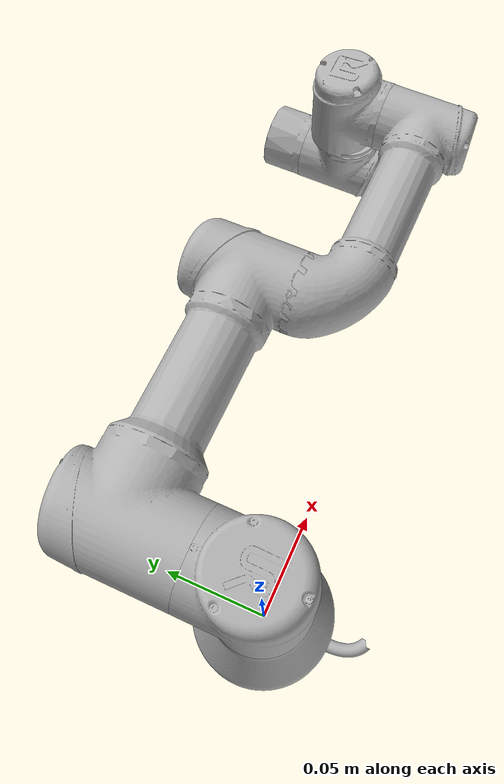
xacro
<?xml version="1.0"?>
<robot xmlns:xacro="http://ros.org/wiki/xacro"
       name="ur3" >

  <!-- common stuff -->
  <xacro:include filename="$(find ur_description)/urdf/common.gazebo.xacro" />

  <!-- ur3 -->
  <xacro:include filename="$(find ur_description)/urdf/ur3.urdf.xacro" />

  <!-- arm -->
  <xacro:ur3_robot prefix="" joint_limited="false"/>
</robot>

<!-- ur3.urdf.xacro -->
<robot xmlns:xacro="http://ros.org/wiki/xacro">

<!--
  Author: Felix Messmer
-->
  <xacro:include filename="$(find ur_description)/urdf/ur.transmission.xacro" />
  <xacro:include filename="$(find ur_description)/urdf/ur.gazebo.xacro" />

  <!-- Inertia parameters -->
  <xacro:property name="base_mass" value="0.0001" />  <!-- This mass might be incorrect -->
  <xacro:property name="shoulder_mass" value="0.0001" />
  <xacro:property name="upper_arm_mass" value="0.000171" />
  <xacro:property name="forearm_mass" value="0.000063" />
  <xacro:property name="wrist_1_mass" value="0.00004" />
  <xacro:property name="wrist_2_mass" value="0.00004" />
  <xacro:property name="wrist_3_mass" value="0.0000175" />

  <xacro:property name="shoulder_cog" value="0.0 -0.02 0.0" />
  <xacro:property name="upper_arm_cog" value="0.13 0.0 0.1157" />
  <xacro:property name="forearm_cog" value="0.05 0.0 0.0238" />
  <xacro:property name="wrist_1_cog" value="0.0 0.0 0.01" />
  <xacro:property name="wrist_2_cog" value="0.0 0.0 0.01" />
  <xacro:property name="wrist_3_cog" value="0.0 0.0 -0.02" />

  <!-- Kinematic model -->
  <!-- Properties from urcontrol.conf -->
  <xacro:property name="ur3_d1" value="0.07595" />
  <xacro:property name="ur3_a2" value="-0.121825" />
  <xacro:property name="ur3_a3" value="-0.106625" />
  <xacro:property name="ur3_d4" value="0.056175" />
  <xacro:property name="ur3_d5" value="0.042675" />
  <xacro:property name="ur3_d6" value="0.04095" />

  <!-- Arbitrary offsets for shoulder/elbow joints -->
  <xacro:property name="shoulder_offset" value="0.0599" />  <!-- measured from model -->
  <xacro:property name="elbow_offset" value="-0.04265" /> <!-- measured from model -->

  <!-- link lengths used in model -->
  <xacro:property name="shoulder_height" value="${ur3_d1}" />
  <xacro:property name="upper_arm_length" value="${-ur3_a2}" />
  <xacro:property name="forearm_length" value="${-ur3_a3}" />
  <xacro:property name="wrist_1_length" value="${ur3_d4 - elbow_offset - shoulder_offset}" />
  <xacro:property name="wrist_2_length" value="${ur3_d5}" />
  <xacro:property name="wrist_3_length" value="${ur3_d6}" />

  <xacro:macro name="cylinder_inertial" params="radius length mass *origin">
    <inertial>
      <mass value="${mass}" />
      <xacro:insert_block name="origin" />
      <inertia ixx="${0.0833333 * mass * (3 * radius * radius + length * length)}" ixy="0.0" ixz="0.0"
        iyy="${0.0833333 * mass * (3 * radius * radius + length * length)}" iyz="0.0"
        izz="${0.5 * mass * radius * radius}" />
    </inertial>
  </xacro:macro>

  <xacro:macro name="ur3_robot" params="prefix joint_limited
     shoulder_pan_lower_limit:=${-2*pi}    shoulder_pan_upper_limit:=${2*pi}
     shoulder_lift_lower_limit:=${-2*pi}    shoulder_lift_upper_limit:=${2*pi}
     elbow_joint_lower_limit:=${-2*pi}    elbow_joint_upper_limit:=${2*pi}
     wrist_1_lower_limit:=${-2*pi}    wrist_1_upper_limit:=${2*pi}
     wrist_2_lower_limit:=${-2*pi}    wrist_2_upper_limit:=${2*pi}
     wrist_3_lower_limit:=${-2*pi}    wrist_3_upper_limit:=${2*pi}">

    <link name="${prefix}base_link" >
      <visual>
        <geometry>
          <mesh filename="package://ur_description/meshes/ur3/visual/base.dae"/>
        </geometry>
        <material name="LightGrey">
          <color rgba="0.7 0.7 0.7 1.0"/>
        </material>
      </visual>
      <collision>
        <geometry>
          <mesh filename="package://ur_description/meshes/ur3/collision/base.stl"/>
        </geometry>
      </collision>
      <xacro:cylinder_inertial radius="0.075" length="0.038" mass="${base_mass}">
        <origin xyz="0.0 0.0 0.0" rpy="0 0 0" />
      </xacro:cylinder_inertial>
    </link>

    <joint name="${prefix}shoulder_pan_joint" type="revolute">
      <parent link="${prefix}base_link" />
      <child link = "${prefix}shoulder_link" />
      <origin xyz="0.0 0.0 ${shoulder_height}" rpy="0.0 0.0 0.0" />
      <axis xyz="0 0 1" />
      <xacro:unless value="${joint_limited}">
        <limit lower="${-2.0 * pi}" upper="${2.0 * pi}" effort="330.0" velocity="2.16"/>
      </xacro:unless>
      <xacro:if value="${joint_limited}">
        <limit lower="${shoulder_pan_lower_limit}" upper="${shoulder_pan_upper_limit}" effort="330.0" velocity="2.16"/>
      </xacro:if>
      <dynamics damping="0.0" friction="0.0"/>
    </joint>

    <link name="${prefix}shoulder_link">
      <visual>
        <geometry>
          <mesh filename="package://ur_description/meshes/ur3/visual/shoulder.dae"/>
        </geometry>
        <material name="LightGrey">
          <color rgba="0.7 0.7 0.7 1.0"/>
        </material>
      </visual>
      <collision>
        <geometry>
          <mesh filename="package://ur_description/meshes/ur3/collision/shoulder.stl"/>
        </geometry>
      </collision>
      <xacro:cylinder_inertial radius="0.075" length="0.178" mass="${shoulder_mass}">
        <origin xyz="0.0 0.0 0.0" rpy="0 0 0" />
      </xacro:cylinder_inertial>
    </link>

    <joint name="${prefix}shoulder_lift_joint" type="revolute">
      <parent link="${prefix}shoulder_link" />
      <child link = "${prefix}upper_arm_link" />
      <origin xyz="0.0 ${shoulder_offset} 0.0" rpy="0.0 ${pi / 2.0} 0.0" />
      <axis xyz="0 1 0" />
      <xacro:unless value="${joint_limited}">
        <limit lower="${-2.0 * pi}" upper="${2.0 * pi}" effort="330.0" velocity="2.16"/>
      </xacro:unless>
      <xacro:if value="${joint_limited}">
        <limit lower="${shoulder_lift_lower_limit}" upper="${shoulder_lift_upper_limit}" effort="330.0" velocity="2.16"/>
      </xacro:if>
      <dynamics damping="0.0" friction="0.0"/>
    </joint>

    <link name="${prefix}upper_arm_link">
      <visual>
        <geometry>
          <mesh filename="package://ur_description/meshes/ur3/visual/upperarm.dae"/>
        </geometry>
        <material name="LightGrey">
          <color rgba="0.7 0.7 0.7 1.0"/>
        </material>
      </visual>
      <collision>
        <geometry>
          <mesh filename="package://ur_description/meshes/ur3/collision/upperarm.stl"/>
        </geometry>
      </collision>
      <xacro:cylinder_inertial radius="0.075" length="${-ur3_a2}" mass="${upper_arm_mass}">
        <origin xyz="0.0 0.0 ${-ur3_a2/2.0}" rpy="0 0 0" />
      </xacro:cylinder_inertial>
    </link>

    <joint name="${prefix}elbow_joint" type="revolute">
      <parent link="${prefix}upper_arm_link" />
      <child link = "${prefix}forearm_link" />
      <origin xyz="0.0 ${elbow_offset} ${upper_arm_length}" rpy="0.0 0.0 0.0" />
      <axis xyz="0 1 0" />
      <xacro:unless value="${joint_limited}">
        <limit lower="${-pi}" upper="${pi}" effort="150.0" velocity="3.15"/>
      </xacro:unless>
      <xacro:if value="${joint_limited}">
        <limit lower="${elbow_joint_lower_limit}" upper="${elbow_joint_upper_limit}" effort="150.0" velocity="3.15"/>
      </xacro:if>
      <dynamics damping="0.0" friction="0.0"/>
    </joint>

    <link name="${prefix}forearm_link">
      <visual>
         <geometry>
          <mesh filename="package://ur_description/meshes/ur3/visual/forearm.dae"/>
        </geometry>
        <material name="LightGrey">
          <color rgba="0.7 0.7 0.7 1.0"/>
        </material>
      </visual>
      <collision>
        <geometry>
          <mesh filename="package://ur_description/meshes/ur3/collision/forearm.stl"/>
        </geometry>
      </collision>
      <xacro:cylinder_inertial radius="0.075" length="${-ur3_a3}" mass="${forearm_mass}">
        <origin xyz="0.0 0.0 ${-ur3_a3/2.0}" rpy="0 0 0" />
      </xacro:cylinder_inertial>
    </link>

    <joint name="${prefix}wrist_1_joint" type="revolute">
      <parent link="${prefix}forearm_link" />
      <child link = "${prefix}wrist_1_link" />
      <origin xyz="0.0 0.0 ${forearm_length}" rpy="0.0 ${pi / 2.0} 0.0" />
      <axis xyz="0 1 0" />
      <xacro:unless value="${joint_limited}">
        <limit lower="${-2.0 * pi}" upper="${2.0 * pi}" effort="54.0" velocity="3.2"/>
      </xacro:unless>
      <xacro:if value="${joint_limited}">
        <limit lower="${wrist_1_lower_limit}" upper="${wrist_1_upper_limit}" effort="54.0" velocity="3.2"/>
      </xacro:if>
      <dynamics damping="0.0" friction="0.0"/>
    </joint>

    <link name="${prefix}wrist_1_link">
      <visual>
        <geometry>
          <mesh filename="package://ur_description/meshes/ur3/visual/wrist1.dae"/>
        </geometry>
        <material name="LightGrey">
          <color rgba="0.7 0.7 0.7 1.0"/>
        </material>
      </visual>
      <collision>
        <geometry>
          <mesh filename="package://ur_description/meshes/ur3/collision/wrist1.stl"/>
        </geometry>
      </collision>
      <xacro:cylinder_inertial radius="0.075" length="0.12" mass="${wrist_1_mass}">
        <origin xyz="0.0 0.0 0.0" rpy="0 0 0" />
      </xacro:cylinder_inertial>
    </link>

    <joint name="${prefix}wrist_2_joint" type="revolute">
      <parent link="${prefix}wrist_1_link" />
      <child link = "${prefix}wrist_2_link" />
      <origin xyz="0.0 ${wrist_1_length} 0.0" rpy="0.0 0.0 0.0" />
      <axis xyz="0 0 1" />
      <xacro:unless value="${joint_limited}">
        <limit lower="${-2.0 * pi}" upper="${2.0 * pi}" effort="54.0" velocity="3.2"/>
      </xacro:unless>
      <xacro:if value="${joint_limited}">
        <limit lower="${wrist_2_lower_limit}" upper="${wrist_2_upper_limit}" effort="54.0" velocity="3.2"/>
      </xacro:if>
      <dynamics damping="0.0" friction="0.0"/>
    </joint>

    <link name="${prefix}wrist_2_link">
      <visual>
        <geometry>
          <mesh filename="package://ur_description/meshes/ur3/visual/wrist2.dae"/>
        </geometry>
        <material name="LightGrey">
          <color rgba="0.7 0.7 0.7 1.0"/>
        </material>
      </visual>
      <collision>
        <geometry>
          <mesh filename="package://ur_description/meshes/ur3/collision/wrist2.stl"/>
        </geometry>
      </collision>
      <xacro:cylinder_inertial radius="0.075" length="0.12" mass="${wrist_2_mass}">
        <origin xyz="0.0 0.0 0.0" rpy="0 0 0" />
      </xacro:cylinder_inertial>
    </link>

    <joint name="${prefix}wrist_3_joint" type="revolute">
      <parent link="${prefix}wrist_2_link" />
      <child link = "${prefix}wrist_3_link" />
      <origin xyz="0.0 0.0 ${wrist_2_length}" rpy="0.0 0.0 0.0" />
      <axis xyz="0 1 0" />
      <xacro:unless value="${joint_limited}">
        <limit lower="${-2.0 * pi}" upper="${2.0 * pi}" effort="54.0" velocity="3.2"/>
      </xacro:unless>
      <xacro:if value="${joint_limited}">
        <limit lower="${wrist_3_lower_limit}" upper="${wrist_3_upper_limit}" effort="54.0" velocity="3.2"/>
      </xacro:if>
      <dynamics damping="0.0" friction="0.0"/>
    </joint>

    <link name="${prefix}wrist_3_link">
      <visual>
        <geometry>
          <mesh filename="package://ur_description/meshes/ur3/visual/wrist3.dae"/>
        </geometry>
        <material name="LightGrey">
          <color rgba="0.7 0.7 0.7 1.0"/>
        </material>
      </visual>
      <collision>
        <geometry>
          <mesh filename="package://ur_description/meshes/ur3/collision/wrist3.stl"/>
        </geometry>
      </collision>
      <xacro:cylinder_inertial radius="0.075" length="0.12" mass="${wrist_3_mass}">
        <origin xyz="0.0 0.0 0.0" rpy="0 0 0" />
      </xacro:cylinder_inertial>
    </link>

    <joint name="${prefix}ee_fixed_joint" type="fixed">
      <parent link="${prefix}wrist_3_link" />
      <child link = "${prefix}ee_link" />
      <origin xyz="0.0 ${wrist_3_length} 0.0" rpy="0.0 0.0 ${pi/2.0}" />
    </joint>

    <link name="${prefix}ee_link">
      <collision>
        <geometry>
          <box size="0.01 0.01 0.01"/>
        </geometry>
        <origin rpy="0 0 0" xyz="-0.01 0 0"/>
      </collision>
    </link>

    <xacro:ur_arm_transmission prefix="${prefix}" />
    <xacro:ur_arm_gazebo prefix="${prefix}" />

    <!-- ROS base_link to UR 'Base' Coordinates transform -->
    <link name="${prefix}base"/>
    <joint name="${prefix}base_link-base_fixed_joint" type="fixed">
      <!-- NOTE: this rotation is only needed as long as base_link itself is
                 not corrected wrt the real robot (ie: rotated over 180
                 degrees)
      -->
      <origin xyz="0 0 0" rpy="0 0 ${-pi}"/>
      <parent link="${prefix}base_link"/>
      <child link="${prefix}base"/>
    </joint>

    <!-- Frame coincident with all-zeros TCP on UR controller -->
    <link name="${prefix}tool0"/>
    <joint name="${prefix}wrist_3_link-tool0_fixed_joint" type="fixed">
      <origin xyz="0 ${wrist_3_length} 0" rpy="${pi/-2.0} 0 0"/>
      <parent link="${prefix}wrist_3_link"/>
      <child link="${prefix}tool0"/>
    </joint>

  </xacro:macro>
</robot>
